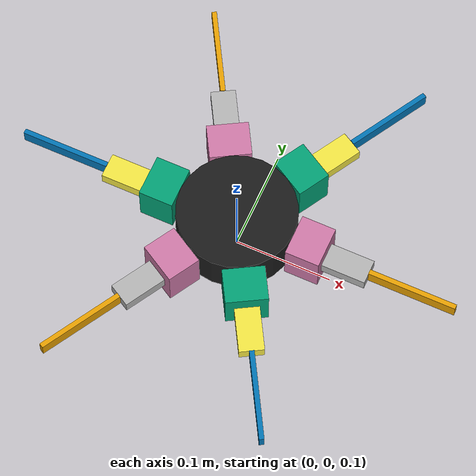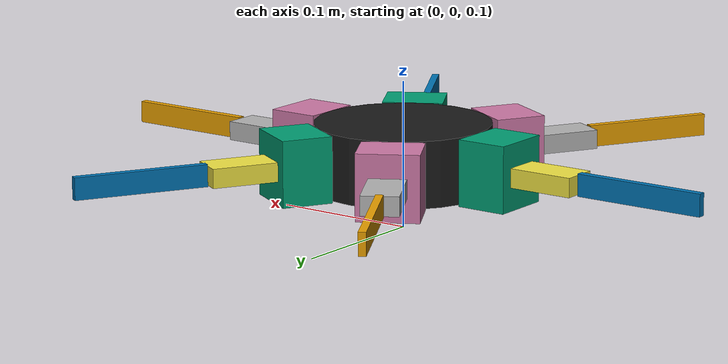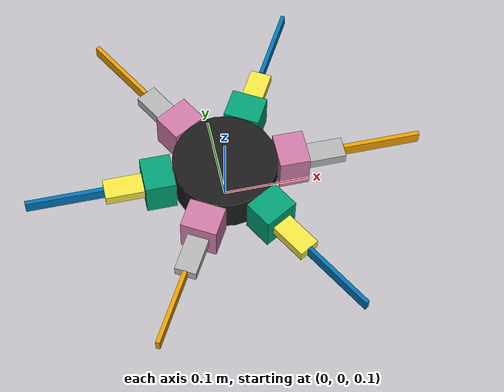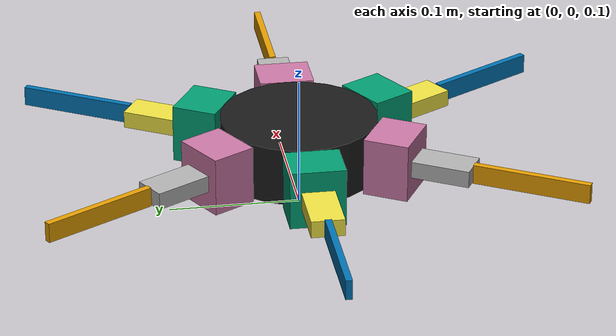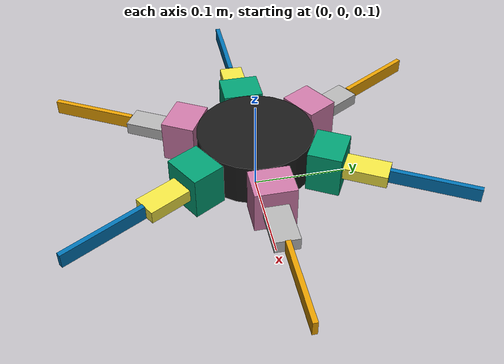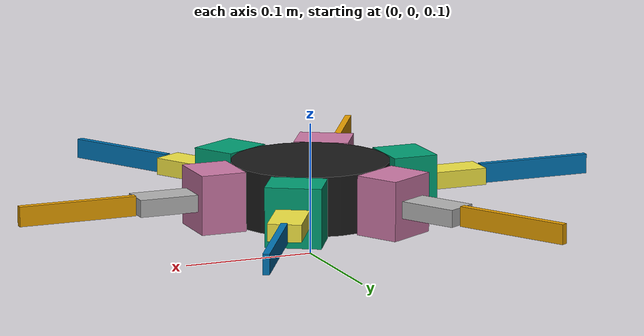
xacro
<?xml version="1.0"?>
<robot name="sophia_hexapod" xmlns:xacro="http://wiki.ros.org/xacro">

    <xacro:arg name="use_gazebo" default="false"/>

    <xacro:include filename="$(find sophia_description)/urdf/mech/prosoma_chassis.urdf.xacro" />
    <xacro:include filename="$(find sophia_description)/urdf/mech/leg.urdf.xacro" />

    <xacro:if value="$(arg use_gazebo)">
        <xacro:include filename="$(find sophia_description)/urdf/gazebo/gazebo_config.urdf.xacro" />
    </xacro:if>

    <link name="base_footprint"/> <joint name="base_joint" type="fixed">
        <parent link="base_footprint"/>
        <child link="base_link"/>
        <origin xyz="0 0 0.15" rpy="0 0 0"/> </joint>

    <xacro:prosoma_chassis base_link="base_link" prefix=""/>

    <xacro:property name="rf_yaw" value="pi/3"/>

    <xacro:macro name="origin_leg" params="yaw">
        <origin xyz="${chassis_radius * cos(yaw)} ${chassis_radius * sin(yaw)} 0.0" rpy="0 0 ${yaw}"/>
    </xacro:macro>

    <xacro:leg prefix="rf_" parent="base_link">
        <xacro:origin_leg yaw="${pi/3}"/>
    </xacro:leg>

    <xacro:leg prefix="rm_" parent="base_link">
        <xacro:origin_leg yaw="${0.0}"/>
    </xacro:leg>

    <xacro:leg prefix="rb_" parent="base_link">
        <xacro:origin_leg yaw="${-pi/3}"/>
    </xacro:leg>

    <xacro:leg prefix="lf_" parent="base_link">
        <xacro:origin_leg yaw="${2*pi/3}"/>
    </xacro:leg>

    <xacro:leg prefix="lm_" parent="base_link">
        <xacro:origin_leg yaw="${pi}"/>
    </xacro:leg>

    <xacro:leg prefix="lb_" parent="base_link">
        <xacro:origin_leg yaw="${4*pi/3}"/>
    </xacro:leg>

    <xacro:if value="$(arg use_gazebo)">
        <xacro:leg_gazebo_config prefix="rf_"/>
        <xacro:leg_gazebo_config prefix="rm_"/>
        <xacro:leg_gazebo_config prefix="rb_"/>
        <xacro:leg_gazebo_config prefix="lf_"/>
        <xacro:leg_gazebo_config prefix="lm_"/>
        <xacro:leg_gazebo_config prefix="lb_"/>
    </xacro:if>

</robot>

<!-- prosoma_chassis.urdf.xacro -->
<robot xmlns:xacro="http://wiki.ros.org/xacro">

    <xacro:property name="chassis_mass" value="0.5"/>
    <xacro:property name="chassis_radius" value="0.06"/>
    <xacro:property name="chassis_height" value="0.045"/>

    <xacro:macro name="prosoma_chassis" params="base_link prefix">
        <link name="${prefix}${base_link}">
            <inertial>
                <origin xyz="0 0 0.0" rpy="0 0 0"/>
                <mass value="${chassis_mass}"/>
                <inertia
                    ixx="${(1/12) * chassis_mass * (3 * chassis_radius**2 + chassis_height**2)}" ixy="0.0" ixz="0.0"
                    iyy="${(1/12) * chassis_mass * (3 * chassis_radius**2 + chassis_height**2)}" iyz="0.0"
                    izz="${(1/2) * chassis_mass * (chassis_radius**2)}"/>
            </inertial>
            <visual>
                <geometry>
                    <cylinder radius="${chassis_radius}" length="${chassis_height}"/>
                </geometry>
                <origin xyz="0.0 0.0 0.0" rpy="0 0 0"/>
                <material name="black">
                    <color rgba="0.1 0.1 0.1 1.0"/>
                </material>
            </visual>
            <collision>
                <geometry>
                    <cylinder radius="${chassis_radius}" length="${chassis_height}"/>
                </geometry>
                <origin xyz="0.0 0.0 0.0" rpy="0 0 0"/>
            </collision>
        </link>
    </xacro:macro>
</robot>

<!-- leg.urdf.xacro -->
<robot xmlns:xacro="http://www.ros.org/wiki/xacro">

    <xacro:property name="joint_effort" value="15.0"/>  <!-- max torque -->
    <xacro:property name="joint_velocity" value="2.792527"/>
    <xacro:property name="joint_damping" value="0.1"/>
    <xacro:property name="joint_friction" value="0.01"/>

    <xacro:property name="coxa_link_mass" value="0.05"/>
    <xacro:property name="coxa_link_width" value="0.035"/>
    <xacro:property name="coxa_link_height" value="0.045"/>
    <xacro:property name="coxa_link_depth" value="0.042"/>

    <xacro:property name="femur_link_mass" value="0.10"/>
    <xacro:property name="femur_link_width" value="0.045"/>
    <xacro:property name="femur_link_height" value="0.013"/>
    <xacro:property name="femur_link_depth" value="0.025"/>

    <xacro:property name="tibia_link_mass" value="0.08"/>
    <xacro:property name="tibia_link_width" value="0.09"/>
    <xacro:property name="tibia_link_height" value="0.015"/>
    <xacro:property name="tibia_link_depth" value="0.005"/>
    <xacro:property name="tibia_sphere_radius" value="${tibia_link_height/2}"/>

    <xacro:macro name="link_inertial" params="m w h d">
        <inertial>
            <origin xyz="0 0 0" rpy="0 0 0"/>
            <mass value="${m}"/>
            <inertia ixx="${(m/12) * (h*h + d*d)}" ixy="0.0" ixz="0.0"
                    iyy="${(m/12) * (w*w + d*d)}" iyz="0.0"
                    izz="${(m/12) * (w*w + h*h)}"/>
        </inertial>
    </xacro:macro>

  <xacro:macro name="material_visual" params="ref_link ambient diffuse specular">
    <gazebo reference="${ref_link}">
      <visual>
        <material>
          <ambient>${ambient}</ambient>
          <diffuse>${diffuse}</diffuse>
          <specular>${specular}</specular>
        </material>
      </visual>
    </gazebo>
  </xacro:macro>

  <xacro:macro name="leg" params="prefix parent *origin">

    <link name="${prefix}coxa_link">
      <xacro:link_inertial m="${coxa_link_mass}" w="${coxa_link_width}" h="${coxa_link_height}" d="${coxa_link_depth}"/>

      <visual>
        <geometry>
          <box size="${coxa_link_width} ${coxa_link_depth} ${coxa_link_height}"/>
        </geometry>
        <origin xyz="${coxa_link_width/2} 0.0 0.0" rpy="0 0 0"/>
      </visual>

      <collision>
        <geometry>
          <box size="${coxa_link_width} ${coxa_link_depth} ${coxa_link_height}"/>
        </geometry>
        <origin xyz="${coxa_link_width/2} 0.0 0.0" rpy="0 0 0"/>
      </collision>
    </link>

    <link name="${prefix}femur_link">
      <xacro:link_inertial m="${femur_link_mass}" w="${femur_link_width}" h="${femur_link_height}" d="${femur_link_depth}"/>

      <visual>
        <geometry>
          <box size="${femur_link_width} ${femur_link_depth} ${femur_link_height}"/>
        </geometry>
        <origin xyz="${femur_link_width/2} 0.0 0.0" rpy="0 0 0"/>
      </visual>

      <collision>
        <geometry>
          <box size="${femur_link_width} ${femur_link_depth} ${femur_link_height}"/>
        </geometry>
        <origin xyz="${femur_link_width/2} 0.0 0.0" rpy="0 0 0"/>
      </collision>
    </link>

    <link name="${prefix}tibia_link">
      <xacro:link_inertial m="${tibia_link_mass}" w="${tibia_link_width}" h="${tibia_link_height}" d="${tibia_link_depth}"/>

      <visual>
        <geometry>
          <box size="${tibia_link_width} ${tibia_link_depth} ${tibia_link_height}"/>
        </geometry>
        <origin xyz="${tibia_link_width/2} 0.0 0.0" rpy="0 0 0"/>
      </visual>

      <collision name="${prefix}tibia_body_collision">
        <geometry>
          <box size="${tibia_link_width - tibia_sphere_radius} ${tibia_link_depth} ${tibia_link_height}"/>
        </geometry>
        <origin xyz="${(tibia_link_width - tibia_sphere_radius)/2} 0.0 0.0" rpy="0 0 0"/>
      </collision>

      <collision name="${prefix}tibia_foot_collision">
        <geometry>
          <sphere radius="${tibia_sphere_radius}"/>
        </geometry>
        <origin xyz="${tibia_link_width - tibia_sphere_radius} 0.0 0.0" rpy="0 0 0"/>
      </collision>
    </link>

    <joint name="${prefix}fixed_base_joint" type="fixed">
      <xacro:insert_block name="origin" />
      <parent link="${parent}"/>
      <child link="${prefix}base_motor_link"/>
    </joint>

    <link name="${prefix}base_motor_link">
        <inertial>
            <mass value="0.01"/> <inertia ixx="0.00001" ixy="0.0" ixz="0.0" iyy="0.00001" iyz="0.0" izz="0.00001"/>
        </inertial>
    </link>

    <joint name="${prefix}coxa_joint" type="revolute">
      <axis xyz="0 0 1"/>
      <limit effort="${joint_effort}" lower="-1.57" upper="1.57" velocity="${joint_velocity}"/>
      <parent link="${prefix}base_motor_link"/>
      <child link="${prefix}coxa_link"/>
      <origin xyz="0 0 0" rpy="0 0 0"/>
      <dynamics damping="${joint_damping}" friction="${joint_friction}"/>
    </joint>

    <joint name="${prefix}coxa_link_to_${prefix}femur_link" type="revolute">
      <axis xyz="0 1 0"/>
      <limit effort="${joint_effort}" lower="-2.5" upper="2.5" velocity="${joint_velocity}"/>
      <parent link="${prefix}coxa_link"/>
      <child link="${prefix}femur_link"/>
      <origin xyz="${coxa_link_width} 0 0" rpy="0 0 0"/>
      <dynamics damping="${joint_damping}" friction="${joint_friction}"/>
    </joint>

    <joint name="${prefix}femur_link_to_${prefix}tibia_link" type="revolute">
      <axis xyz="0 1 0"/>
      <limit effort="${joint_effort}" lower="-2.0" upper="2.0" velocity="${joint_velocity}"/>
      <parent link="${prefix}femur_link"/>
      <child link="${prefix}tibia_link"/>
      <origin xyz="${femur_link_width} 0 0" rpy="0 0 0"/>
      <dynamics damping="${joint_damping}" friction="${joint_friction}"/>
    </joint>

  </xacro:macro>
</robot>
